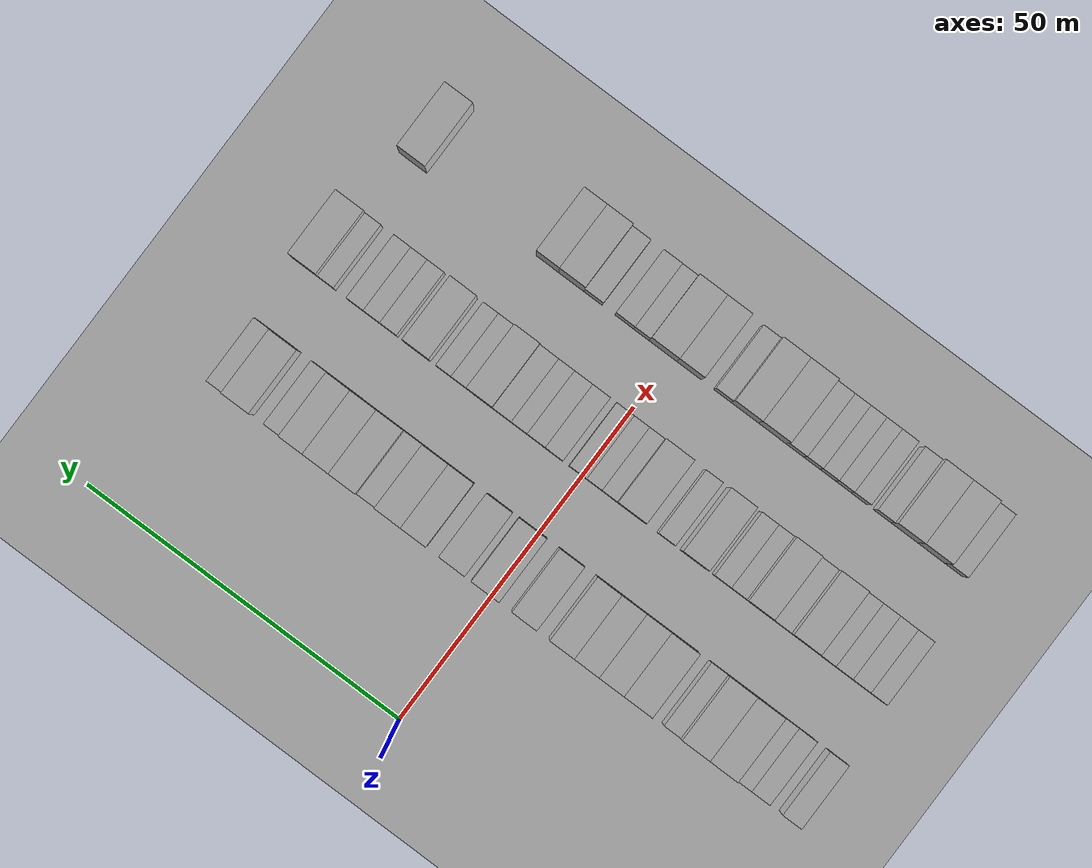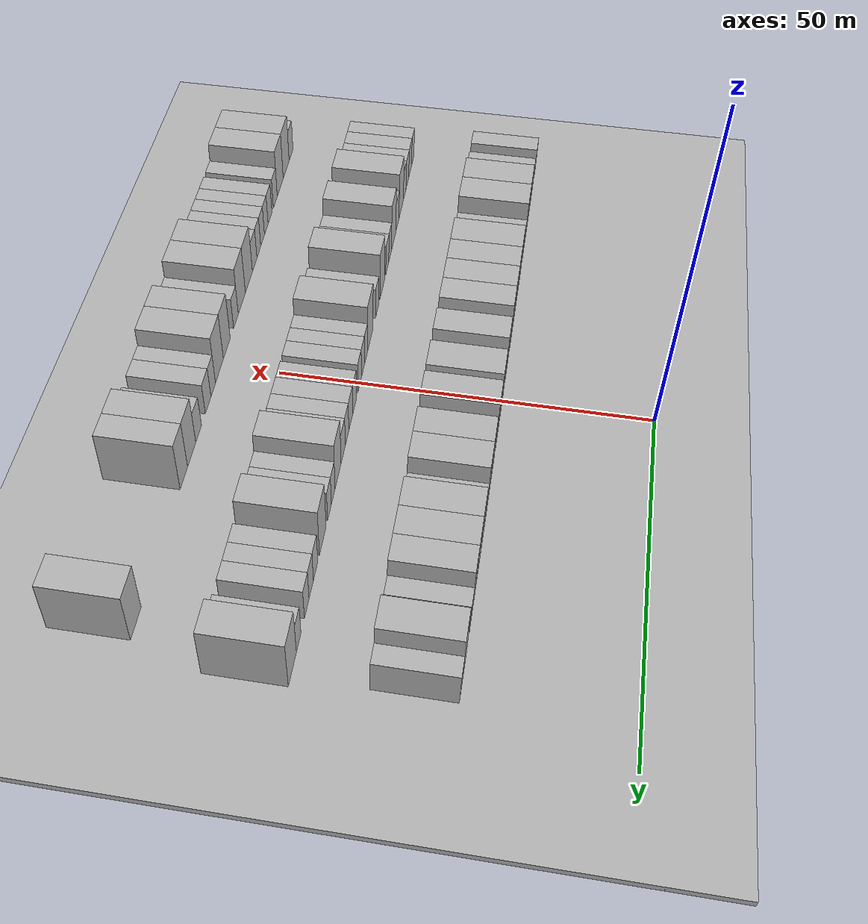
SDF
<sdf version="1.6">
 <world name="default">
  <include><name>ground_plane_1</name><uri>model://HANNAS_ground_plane</uri></include>
  <include>
   <name>ground_plane_2</name>
   <uri>model://HANNAS_ground_plane</uri>
   <pose>100 0 0  0 0 0</pose>
  </include>
  <model name="building_49">
   <static>1</static>
   <pose>25.0000 -47.3075 0 0.000000 0.000000 0.000000</pose>
   <link name="link">
    <pose>0 0 3.00 0 0 0</pose>
    <collision name="collision"><geometry><box><size>10.0000 2.9956 6.0000</size></box></geometry></collision>
    <visual name="visual">
     <cast_shadows>0</cast_shadows>
     <geometry><box><size>10.0000 2.9956 6.0000</size></box></geometry>
     <material>
      <script>
       <uri>model://HANNAS_wall/materials/scripts</uri>
       <uri>model://HANNAS_wall/materials/textures</uri>
       <name>vrc/HANNAS_wall</name>
      </script>
     </material>
    </visual>
   </link>
  </model>
  <model name="building_50">
   <static>1</static>
   <pose>25.0000 -42.3618 0 0.000000 0.000000 0.000000</pose>
   <link name="link">
    <pose>0 0 3.00 0 0 0</pose>
    <collision name="collision"><geometry><box><size>10.0000 2.8956 6.0000</size></box></geometry></collision>
    <visual name="visual">
     <cast_shadows>0</cast_shadows>
     <geometry><box><size>10.0000 2.8956 6.0000</size></box></geometry>
     <material>
      <script>
       <uri>model://HANNAS_wall/materials/scripts</uri>
       <uri>model://HANNAS_wall/materials/textures</uri>
       <name>vrc/HANNAS_wall</name>
      </script>
     </material>
    </visual>
   </link>
  </model>
  <model name="building_51">
   <static>1</static>
   <pose>25.0000 -39.6973 0 0.000000 0.000000 0.000000</pose>
   <link name="link">
    <pose>0 0 3.00 0 0 0</pose>
    <collision name="collision"><geometry><box><size>10.0000 2.4335 6.0000</size></box></geometry></collision>
    <visual name="visual">
     <cast_shadows>0</cast_shadows>
     <geometry><box><size>10.0000 2.4335 6.0000</size></box></geometry>
     <material>
      <script>
       <uri>model://HANNAS_wall/materials/scripts</uri>
       <uri>model://HANNAS_wall/materials/textures</uri>
       <name>vrc/HANNAS_wall</name>
      </script>
     </material>
    </visual>
   </link>
  </model>
  <model name="building_52">
   <static>1</static>
   <pose>25.0000 -36.2918 0 0.000000 0.000000 0.000000</pose>
   <link name="link">
    <pose>0 0 4.50 0 0 0</pose>
    <collision name="collision"><geometry><box><size>10.0000 4.3774 9.0000</size></box></geometry></collision>
    <visual name="visual">
     <cast_shadows>0</cast_shadows>
     <geometry><box><size>10.0000 4.3774 9.0000</size></box></geometry>
     <material>
      <script>
       <uri>model://HANNAS_wall/materials/scripts</uri>
       <uri>model://HANNAS_wall/materials/textures</uri>
       <name>vrc/HANNAS_wall</name>
      </script>
     </material>
    </visual>
   </link>
  </model>
  <model name="building_53">
   <static>1</static>
   <pose>25.0000 -31.9116 0 0.000000 0.000000 0.000000</pose>
   <link name="link">
    <pose>0 0 4.50 0 0 0</pose>
    <collision name="collision"><geometry><box><size>10.0000 4.3831 9.0000</size></box></geometry></collision>
    <visual name="visual">
     <cast_shadows>0</cast_shadows>
     <geometry><box><size>10.0000 4.3831 9.0000</size></box></geometry>
     <material>
      <script>
       <uri>model://HANNAS_wall/materials/scripts</uri>
       <uri>model://HANNAS_wall/materials/textures</uri>
       <name>vrc/HANNAS_wall</name>
      </script>
     </material>
    </visual>
   </link>
  </model>
  <model name="building_54">
   <static>1</static>
   <pose>25.0000 -28.4054 0 0.000000 0.000000 0.000000</pose>
   <link name="link">
    <pose>0 0 3.00 0 0 0</pose>
    <collision name="collision"><geometry><box><size>10.0000 2.6292 6.0000</size></box></geometry></collision>
    <visual name="visual">
     <cast_shadows>0</cast_shadows>
     <geometry><box><size>10.0000 2.6292 6.0000</size></box></geometry>
     <material>
      <script>
       <uri>model://HANNAS_wall/materials/scripts</uri>
       <uri>model://HANNAS_wall/materials/textures</uri>
       <name>vrc/HANNAS_wall</name>
      </script>
     </material>
    </visual>
   </link>
  </model>
  <model name="building_55">
   <static>1</static>
   <pose>25.0000 -22.8573 0 0.000000 0.000000 0.000000</pose>
   <link name="link">
    <pose>0 0 4.50 0 0 0</pose>
    <collision name="collision"><geometry><box><size>10.0000 4.4671 9.0000</size></box></geometry></collision>
    <visual name="visual">
     <cast_shadows>0</cast_shadows>
     <geometry><box><size>10.0000 4.4671 9.0000</size></box></geometry>
     <material>
      <script>
       <uri>model://HANNAS_wall/materials/scripts</uri>
       <uri>model://HANNAS_wall/materials/textures</uri>
       <name>vrc/HANNAS_wall</name>
      </script>
     </material>
    </visual>
   </link>
  </model>
  <model name="building_56">
   <static>1</static>
   <pose>25.0000 -18.6829 0 0.000000 0.000000 0.000000</pose>
   <link name="link">
    <pose>0 0 4.50 0 0 0</pose>
    <collision name="collision"><geometry><box><size>10.0000 3.8817 9.0000</size></box></geometry></collision>
    <visual name="visual">
     <cast_shadows>0</cast_shadows>
     <geometry><box><size>10.0000 3.8817 9.0000</size></box></geometry>
     <material>
      <script>
       <uri>model://HANNAS_wall/materials/scripts</uri>
       <uri>model://HANNAS_wall/materials/textures</uri>
       <name>vrc/HANNAS_wall</name>
      </script>
     </material>
    </visual>
   </link>
  </model>
  <model name="building_57">
   <static>1</static>
   <pose>25.0000 -14.7864 0 0.000000 0.000000 0.000000</pose>
   <link name="link">
    <pose>0 0 4.50 0 0 0</pose>
    <collision name="collision"><geometry><box><size>10.0000 3.9114 9.0000</size></box></geometry></collision>
    <visual name="visual">
     <cast_shadows>0</cast_shadows>
     <geometry><box><size>10.0000 3.9114 9.0000</size></box></geometry>
     <material>
      <script>
       <uri>model://HANNAS_wall/materials/scripts</uri>
       <uri>model://HANNAS_wall/materials/textures</uri>
       <name>vrc/HANNAS_wall</name>
      </script>
     </material>
    </visual>
   </link>
  </model>
  <model name="building_58">
   <static>1</static>
   <pose>25.0000 -10.9060 0 0.000000 0.000000 0.000000</pose>
   <link name="link">
    <pose>0 0 4.50 0 0 0</pose>
    <collision name="collision"><geometry><box><size>10.0000 3.8493 9.0000</size></box></geometry></collision>
    <visual name="visual">
     <cast_shadows>0</cast_shadows>
     <geometry><box><size>10.0000 3.8493 9.0000</size></box></geometry>
     <material>
      <script>
       <uri>model://HANNAS_wall/materials/scripts</uri>
       <uri>model://HANNAS_wall/materials/textures</uri>
       <name>vrc/HANNAS_wall</name>
      </script>
     </material>
    </visual>
   </link>
  </model>
  <model name="building_59">
   <static>1</static>
   <pose>25.0000 -5.0207 0 0.000000 0.000000 0.000000</pose>
   <link name="link">
    <pose>0 0 4.50 0 0 0</pose>
    <collision name="collision"><geometry><box><size>10.0000 3.9213 9.0000</size></box></geometry></collision>
    <visual name="visual">
     <cast_shadows>0</cast_shadows>
     <geometry><box><size>10.0000 3.9213 9.0000</size></box></geometry>
     <material>
      <script>
       <uri>model://HANNAS_wall/materials/scripts</uri>
       <uri>model://HANNAS_wall/materials/textures</uri>
       <name>vrc/HANNAS_wall</name>
      </script>
     </material>
    </visual>
   </link>
  </model>
  <model name="building_60">
   <static>1</static>
   <pose>25.0000 1.1351 0 0.000000 0.000000 0.000000</pose>
   <link name="link">
    <pose>0 0 4.50 0 0 0</pose>
    <collision name="collision"><geometry><box><size>10.0000 4.3903 9.0000</size></box></geometry></collision>
    <visual name="visual">
     <cast_shadows>0</cast_shadows>
     <geometry><box><size>10.0000 4.3903 9.0000</size></box></geometry>
     <material>
      <script>
       <uri>model://HANNAS_wall/materials/scripts</uri>
       <uri>model://HANNAS_wall/materials/textures</uri>
       <name>vrc/HANNAS_wall</name>
      </script>
     </material>
    </visual>
   </link>
  </model>
  <model name="building_61">
   <static>1</static>
   <pose>25.0000 6.3859 0 0.000000 0.000000 0.000000</pose>
   <link name="link">
    <pose>0 0 4.50 0 0 0</pose>
    <collision name="collision"><geometry><box><size>10.0000 4.1113 9.0000</size></box></geometry></collision>
    <visual name="visual">
     <cast_shadows>0</cast_shadows>
     <geometry><box><size>10.0000 4.1113 9.0000</size></box></geometry>
     <material>
      <script>
       <uri>model://HANNAS_wall/materials/scripts</uri>
       <uri>model://HANNAS_wall/materials/textures</uri>
       <name>vrc/HANNAS_wall</name>
      </script>
     </material>
    </visual>
   </link>
  </model>
  <model name="building_62">
   <static>1</static>
   <pose>25.0000 12.4364 0 0.000000 0.000000 0.000000</pose>
   <link name="link">
    <pose>0 0 4.50 0 0 0</pose>
    <collision name="collision"><geometry><box><size>10.0000 3.9896 9.0000</size></box></geometry></collision>
    <visual name="visual">
     <cast_shadows>0</cast_shadows>
     <geometry><box><size>10.0000 3.9896 9.0000</size></box></geometry>
     <material>
      <script>
       <uri>model://HANNAS_wall/materials/scripts</uri>
       <uri>model://HANNAS_wall/materials/textures</uri>
       <name>vrc/HANNAS_wall</name>
      </script>
     </material>
    </visual>
   </link>
  </model>
  <model name="building_63">
   <static>1</static>
   <pose>25.0000 16.4894 0 0.000000 0.000000 0.000000</pose>
   <link name="link">
    <pose>0 0 4.50 0 0 0</pose>
    <collision name="collision"><geometry><box><size>10.0000 4.1165 9.0000</size></box></geometry></collision>
    <visual name="visual">
     <cast_shadows>0</cast_shadows>
     <geometry><box><size>10.0000 4.1165 9.0000</size></box></geometry>
     <material>
      <script>
       <uri>model://HANNAS_wall/materials/scripts</uri>
       <uri>model://HANNAS_wall/materials/textures</uri>
       <name>vrc/HANNAS_wall</name>
      </script>
     </material>
    </visual>
   </link>
  </model>
  <model name="building_64">
   <static>1</static>
   <pose>25.0000 20.0148 0 0.000000 0.000000 0.000000</pose>
   <link name="link">
    <pose>0 0 3.00 0 0 0</pose>
    <collision name="collision"><geometry><box><size>10.0000 2.9342 6.0000</size></box></geometry></collision>
    <visual name="visual">
     <cast_shadows>0</cast_shadows>
     <geometry><box><size>10.0000 2.9342 6.0000</size></box></geometry>
     <material>
      <script>
       <uri>model://HANNAS_wall/materials/scripts</uri>
       <uri>model://HANNAS_wall/materials/textures</uri>
       <name>vrc/HANNAS_wall</name>
      </script>
     </material>
    </visual>
   </link>
  </model>
  <model name="building_65">
   <static>1</static>
   <pose>25.0000 23.6106 0 0.000000 0.000000 0.000000</pose>
   <link name="link">
    <pose>0 0 4.50 0 0 0</pose>
    <collision name="collision"><geometry><box><size>10.0000 4.2573 9.0000</size></box></geometry></collision>
    <visual name="visual">
     <cast_shadows>0</cast_shadows>
     <geometry><box><size>10.0000 4.2573 9.0000</size></box></geometry>
     <material>
      <script>
       <uri>model://HANNAS_wall/materials/scripts</uri>
       <uri>model://HANNAS_wall/materials/textures</uri>
       <name>vrc/HANNAS_wall</name>
      </script>
     </material>
    </visual>
   </link>
  </model>
  <model name="building_66">
   <static>1</static>
   <pose>25.0000 27.7748 0 0.000000 0.000000 0.000000</pose>
   <link name="link">
    <pose>0 0 4.50 0 0 0</pose>
    <collision name="collision"><geometry><box><size>10.0000 4.0713 9.0000</size></box></geometry></collision>
    <visual name="visual">
     <cast_shadows>0</cast_shadows>
     <geometry><box><size>10.0000 4.0713 9.0000</size></box></geometry>
     <material>
      <script>
       <uri>model://HANNAS_wall/materials/scripts</uri>
       <uri>model://HANNAS_wall/materials/textures</uri>
       <name>vrc/HANNAS_wall</name>
      </script>
     </material>
    </visual>
   </link>
  </model>
  <model name="building_67">
   <static>1</static>
   <pose>25.0000 31.6976 0 0.000000 0.000000 0.000000</pose>
   <link name="link">
    <pose>0 0 4.50 0 0 0</pose>
    <collision name="collision"><geometry><box><size>10.0000 3.7743 9.0000</size></box></geometry></collision>
    <visual name="visual">
     <cast_shadows>0</cast_shadows>
     <geometry><box><size>10.0000 3.7743 9.0000</size></box></geometry>
     <material>
      <script>
       <uri>model://HANNAS_wall/materials/scripts</uri>
       <uri>model://HANNAS_wall/materials/textures</uri>
       <name>vrc/HANNAS_wall</name>
      </script>
     </material>
    </visual>
   </link>
  </model>
  <model name="building_68">
   <static>1</static>
   <pose>25.0000 34.8935 0 0.000000 0.000000 0.000000</pose>
   <link name="link">
    <pose>0 0 3.00 0 0 0</pose>
    <collision name="collision"><geometry><box><size>10.0000 2.6174 6.0000</size></box></geometry></collision>
    <visual name="visual">
     <cast_shadows>0</cast_shadows>
     <geometry><box><size>10.0000 2.6174 6.0000</size></box></geometry>
     <material>
      <script>
       <uri>model://HANNAS_wall/materials/scripts</uri>
       <uri>model://HANNAS_wall/materials/textures</uri>
       <name>vrc/HANNAS_wall</name>
      </script>
     </material>
    </visual>
   </link>
  </model>
  <model name="building_69">
   <static>1</static>
   <pose>25.0000 40.3773 0 0.000000 0.000000 0.000000</pose>
   <link name="link">
    <pose>0 0 4.50 0 0 0</pose>
    <collision name="collision"><geometry><box><size>10.0000 4.3502 9.0000</size></box></geometry></collision>
    <visual name="visual">
     <cast_shadows>0</cast_shadows>
     <geometry><box><size>10.0000 4.3502 9.0000</size></box></geometry>
     <material>
      <script>
       <uri>model://HANNAS_wall/materials/scripts</uri>
       <uri>model://HANNAS_wall/materials/textures</uri>
       <name>vrc/HANNAS_wall</name>
      </script>
     </material>
    </visual>
   </link>
  </model>
  <model name="building_70">
   <static>1</static>
   <pose>25.0000 43.8943 0 0.000000 0.000000 0.000000</pose>
   <link name="link">
    <pose>0 0 3.00 0 0 0</pose>
    <collision name="collision"><geometry><box><size>10.0000 2.6839 6.0000</size></box></geometry></collision>
    <visual name="visual">
     <cast_shadows>0</cast_shadows>
     <geometry><box><size>10.0000 2.6839 6.0000</size></box></geometry>
     <material>
      <script>
       <uri>model://HANNAS_wall/materials/scripts</uri>
       <uri>model://HANNAS_wall/materials/textures</uri>
       <name>vrc/HANNAS_wall</name>
      </script>
     </material>
    </visual>
   </link>
  </model>
  <model name="building_160">
   <static>1</static>
   <pose>44.0000 -46.7497 0 0.000000 0.000000 0.000000</pose>
   <link name="link">
    <pose>0 0 3.00 0 0 0</pose>
    <collision name="collision"><geometry><box><size>10.0000 2.5936 6.0000</size></box></geometry></collision>
    <visual name="visual">
     <cast_shadows>0</cast_shadows>
     <geometry><box><size>10.0000 2.5936 6.0000</size></box></geometry>
     <material>
      <script>
       <uri>model://HANNAS_wall/materials/scripts</uri>
       <uri>model://HANNAS_wall/materials/textures</uri>
       <name>vrc/HANNAS_wall</name>
      </script>
     </material>
    </visual>
   </link>
  </model>
  <model name="building_161">
   <static>1</static>
   <pose>44.0000 -44.0382 0 0.000000 0.000000 0.000000</pose>
   <link name="link">
    <pose>0 0 3.00 0 0 0</pose>
    <collision name="collision"><geometry><box><size>10.0000 2.8294 6.0000</size></box></geometry></collision>
    <visual name="visual">
     <cast_shadows>0</cast_shadows>
     <geometry><box><size>10.0000 2.8294 6.0000</size></box></geometry>
     <material>
      <script>
       <uri>model://HANNAS_wall/materials/scripts</uri>
       <uri>model://HANNAS_wall/materials/textures</uri>
       <name>vrc/HANNAS_wall</name>
      </script>
     </material>
    </visual>
   </link>
  </model>
  <model name="building_162">
   <static>1</static>
   <pose>44.0000 -41.2803 0 0.000000 0.000000 0.000000</pose>
   <link name="link">
    <pose>0 0 3.00 0 0 0</pose>
    <collision name="collision"><geometry><box><size>10.0000 2.6864 6.0000</size></box></geometry></collision>
    <visual name="visual">
     <cast_shadows>0</cast_shadows>
     <geometry><box><size>10.0000 2.6864 6.0000</size></box></geometry>
     <material>
      <script>
       <uri>model://HANNAS_wall/materials/scripts</uri>
       <uri>model://HANNAS_wall/materials/textures</uri>
       <name>vrc/HANNAS_wall</name>
      </script>
     </material>
    </visual>
   </link>
  </model>
  <model name="building_163">
   <static>1</static>
   <pose>44.0000 -38.6040 0 0.000000 0.000000 0.000000</pose>
   <link name="link">
    <pose>0 0 3.00 0 0 0</pose>
    <collision name="collision"><geometry><box><size>10.0000 2.6662 6.0000</size></box></geometry></collision>
    <visual name="visual">
     <cast_shadows>0</cast_shadows>
     <geometry><box><size>10.0000 2.6662 6.0000</size></box></geometry>
     <material>
      <script>
       <uri>model://HANNAS_wall/materials/scripts</uri>
       <uri>model://HANNAS_wall/materials/textures</uri>
       <name>vrc/HANNAS_wall</name>
      </script>
     </material>
    </visual>
   </link>
  </model>
  <model name="building_164">
   <static>1</static>
   <pose>44.0000 -35.1034 0 0.000000 0.000000 0.000000</pose>
   <link name="link">
    <pose>0 0 4.50 0 0 0</pose>
    <collision name="collision"><geometry><box><size>10.0000 4.3351 9.0000</size></box></geometry></collision>
    <visual name="visual">
     <cast_shadows>0</cast_shadows>
     <geometry><box><size>10.0000 4.3351 9.0000</size></box></geometry>
     <material>
      <script>
       <uri>model://HANNAS_wall/materials/scripts</uri>
       <uri>model://HANNAS_wall/materials/textures</uri>
       <name>vrc/HANNAS_wall</name>
      </script>
     </material>
    </visual>
   </link>
  </model>
  <model name="building_165">
   <static>1</static>
   <pose>44.0000 -31.4518 0 0.000000 0.000000 0.000000</pose>
   <link name="link">
    <pose>0 0 3.00 0 0 0</pose>
    <collision name="collision"><geometry><box><size>10.0000 2.9680 6.0000</size></box></geometry></collision>
    <visual name="visual">
     <cast_shadows>0</cast_shadows>
     <geometry><box><size>10.0000 2.9680 6.0000</size></box></geometry>
     <material>
      <script>
       <uri>model://HANNAS_wall/materials/scripts</uri>
       <uri>model://HANNAS_wall/materials/textures</uri>
       <name>vrc/HANNAS_wall</name>
      </script>
     </material>
    </visual>
   </link>
  </model>
  <model name="building_166">
   <static>1</static>
   <pose>44.0000 -27.9269 0 0.000000 0.000000 0.000000</pose>
   <link name="link">
    <pose>0 0 4.50 0 0 0</pose>
    <collision name="collision"><geometry><box><size>10.0000 4.0819 9.0000</size></box></geometry></collision>
    <visual name="visual">
     <cast_shadows>0</cast_shadows>
     <geometry><box><size>10.0000 4.0819 9.0000</size></box></geometry>
     <material>
      <script>
       <uri>model://HANNAS_wall/materials/scripts</uri>
       <uri>model://HANNAS_wall/materials/textures</uri>
       <name>vrc/HANNAS_wall</name>
      </script>
     </material>
    </visual>
   </link>
  </model>
  <model name="building_167">
   <static>1</static>
   <pose>44.0000 -24.6634 0 0.000000 0.000000 0.000000</pose>
   <link name="link">
    <pose>0 0 3.00 0 0 0</pose>
    <collision name="collision"><geometry><box><size>10.0000 2.4450 6.0000</size></box></geometry></collision>
    <visual name="visual">
     <cast_shadows>0</cast_shadows>
     <geometry><box><size>10.0000 2.4450 6.0000</size></box></geometry>
     <material>
      <script>
       <uri>model://HANNAS_wall/materials/scripts</uri>
       <uri>model://HANNAS_wall/materials/textures</uri>
       <name>vrc/HANNAS_wall</name>
      </script>
     </material>
    </visual>
   </link>
  </model>
  <model name="building_168">
   <static>1</static>
   <pose>44.0000 -22.1077 0 0.000000 0.000000 0.000000</pose>
   <link name="link">
    <pose>0 0 3.00 0 0 0</pose>
    <collision name="collision"><geometry><box><size>10.0000 2.6664 6.0000</size></box></geometry></collision>
    <visual name="visual">
     <cast_shadows>0</cast_shadows>
     <geometry><box><size>10.0000 2.6664 6.0000</size></box></geometry>
     <material>
      <script>
       <uri>model://HANNAS_wall/materials/scripts</uri>
       <uri>model://HANNAS_wall/materials/textures</uri>
       <name>vrc/HANNAS_wall</name>
      </script>
     </material>
    </visual>
   </link>
  </model>
  <model name="building_169">
   <static>1</static>
   <pose>44.0000 -17.7062 0 0.000000 0.000000 0.000000</pose>
   <link name="link">
    <pose>0 0 4.50 0 0 0</pose>
    <collision name="collision"><geometry><box><size>10.0000 4.1365 9.0000</size></box></geometry></collision>
    <visual name="visual">
     <cast_shadows>0</cast_shadows>
     <geometry><box><size>10.0000 4.1365 9.0000</size></box></geometry>
     <material>
      <script>
       <uri>model://HANNAS_wall/materials/scripts</uri>
       <uri>model://HANNAS_wall/materials/textures</uri>
       <name>vrc/HANNAS_wall</name>
      </script>
     </material>
    </visual>
   </link>
  </model>
  <model name="building_170">
   <static>1</static>
   <pose>44.0000 -13.2798 0 0.000000 0.000000 0.000000</pose>
   <link name="link">
    <pose>0 0 3.00 0 0 0</pose>
    <collision name="collision"><geometry><box><size>10.0000 2.7163 6.0000</size></box></geometry></collision>
    <visual name="visual">
     <cast_shadows>0</cast_shadows>
     <geometry><box><size>10.0000 2.7163 6.0000</size></box></geometry>
     <material>
      <script>
       <uri>model://HANNAS_wall/materials/scripts</uri>
       <uri>model://HANNAS_wall/materials/textures</uri>
       <name>vrc/HANNAS_wall</name>
      </script>
     </material>
    </visual>
   </link>
  </model>
  <model name="building_171">
   <static>1</static>
   <pose>44.0000 -7.6720 0 0.000000 0.000000 0.000000</pose>
   <link name="link">
    <pose>0 0 4.50 0 0 0</pose>
    <collision name="collision"><geometry><box><size>10.0000 4.4992 9.0000</size></box></geometry></collision>
    <visual name="visual">
     <cast_shadows>0</cast_shadows>
     <geometry><box><size>10.0000 4.4992 9.0000</size></box></geometry>
     <material>
      <script>
       <uri>model://HANNAS_wall/materials/scripts</uri>
       <uri>model://HANNAS_wall/materials/textures</uri>
       <name>vrc/HANNAS_wall</name>
      </script>
     </material>
    </visual>
   </link>
  </model>
  <model name="building_172">
   <static>1</static>
   <pose>44.0000 -4.2141 0 0.000000 0.000000 0.000000</pose>
   <link name="link">
    <pose>0 0 3.00 0 0 0</pose>
    <collision name="collision"><geometry><box><size>10.0000 2.4166 6.0000</size></box></geometry></collision>
    <visual name="visual">
     <cast_shadows>0</cast_shadows>
     <geometry><box><size>10.0000 2.4166 6.0000</size></box></geometry>
     <material>
      <script>
       <uri>model://HANNAS_wall/materials/scripts</uri>
       <uri>model://HANNAS_wall/materials/textures</uri>
       <name>vrc/HANNAS_wall</name>
      </script>
     </material>
    </visual>
   </link>
  </model>
  <model name="building_173">
   <static>1</static>
   <pose>44.0000 -1.7904 0 0.000000 0.000000 0.000000</pose>
   <link name="link">
    <pose>0 0 3.00 0 0 0</pose>
    <collision name="collision"><geometry><box><size>10.0000 2.4309 6.0000</size></box></geometry></collision>
    <visual name="visual">
     <cast_shadows>0</cast_shadows>
     <geometry><box><size>10.0000 2.4309 6.0000</size></box></geometry>
     <material>
      <script>
       <uri>model://HANNAS_wall/materials/scripts</uri>
       <uri>model://HANNAS_wall/materials/textures</uri>
       <name>vrc/HANNAS_wall</name>
      </script>
     </material>
    </visual>
   </link>
  </model>
  <model name="building_174">
   <static>1</static>
   <pose>44.0000 0.8047 0 0.000000 0.000000 0.000000</pose>
   <link name="link">
    <pose>0 0 3.00 0 0 0</pose>
    <collision name="collision"><geometry><box><size>10.0000 2.7592 6.0000</size></box></geometry></collision>
    <visual name="visual">
     <cast_shadows>0</cast_shadows>
     <geometry><box><size>10.0000 2.7592 6.0000</size></box></geometry>
     <material>
      <script>
       <uri>model://HANNAS_wall/materials/scripts</uri>
       <uri>model://HANNAS_wall/materials/textures</uri>
       <name>vrc/HANNAS_wall</name>
      </script>
     </material>
    </visual>
   </link>
  </model>
  <model name="building_175">
   <static>1</static>
   <pose>44.0000 4.5854 0 0.000000 0.000000 0.000000</pose>
   <link name="link">
    <pose>0 0 3.00 0 0 0</pose>
    <collision name="collision"><geometry><box><size>10.0000 2.8022 6.0000</size></box></geometry></collision>
    <visual name="visual">
     <cast_shadows>0</cast_shadows>
     <geometry><box><size>10.0000 2.8022 6.0000</size></box></geometry>
     <material>
      <script>
       <uri>model://HANNAS_wall/materials/scripts</uri>
       <uri>model://HANNAS_wall/materials/textures</uri>
       <name>vrc/HANNAS_wall</name>
      </script>
     </material>
    </visual>
   </link>
  </model>
  <model name="building_176">
   <static>1</static>
   <pose>44.0000 7.4216 0 0.000000 0.000000 0.000000</pose>
   <link name="link">
    <pose>0 0 3.00 0 0 0</pose>
    <collision name="collision"><geometry><box><size>10.0000 2.8704 6.0000</size></box></geometry></collision>
    <visual name="visual">
     <cast_shadows>0</cast_shadows>
     <geometry><box><size>10.0000 2.8704 6.0000</size></box></geometry>
     <material>
      <script>
       <uri>model://HANNAS_wall/materials/scripts</uri>
       <uri>model://HANNAS_wall/materials/textures</uri>
       <name>vrc/HANNAS_wall</name>
      </script>
     </material>
    </visual>
   </link>
  </model>
  <model name="building_177">
   <static>1</static>
   <pose>44.0000 10.1140 0 0.000000 0.000000 0.000000</pose>
   <link name="link">
    <pose>0 0 3.00 0 0 0</pose>
    <collision name="collision"><geometry><box><size>10.0000 2.5143 6.0000</size></box></geometry></collision>
    <visual name="visual">
     <cast_shadows>0</cast_shadows>
     <geometry><box><size>10.0000 2.5143 6.0000</size></box></geometry>
     <material>
      <script>
       <uri>model://HANNAS_wall/materials/scripts</uri>
       <uri>model://HANNAS_wall/materials/textures</uri>
       <name>vrc/HANNAS_wall</name>
      </script>
     </material>
    </visual>
   </link>
  </model>
  <model name="building_178">
   <static>1</static>
   <pose>44.0000 12.8634 0 0.000000 0.000000 0.000000</pose>
   <link name="link">
    <pose>0 0 3.00 0 0 0</pose>
    <collision name="collision"><geometry><box><size>10.0000 2.9845 6.0000</size></box></geometry></collision>
    <visual name="visual">
     <cast_shadows>0</cast_shadows>
     <geometry><box><size>10.0000 2.9845 6.0000</size></box></geometry>
     <material>
      <script>
       <uri>model://HANNAS_wall/materials/scripts</uri>
       <uri>model://HANNAS_wall/materials/textures</uri>
       <name>vrc/HANNAS_wall</name>
      </script>
     </material>
    </visual>
   </link>
  </model>
  <model name="building_179">
   <static>1</static>
   <pose>44.0000 16.3853 0 0.000000 0.000000 0.000000</pose>
   <link name="link">
    <pose>0 0 4.50 0 0 0</pose>
    <collision name="collision"><geometry><box><size>10.0000 4.0593 9.0000</size></box></geometry></collision>
    <visual name="visual">
     <cast_shadows>0</cast_shadows>
     <geometry><box><size>10.0000 4.0593 9.0000</size></box></geometry>
     <material>
      <script>
       <uri>model://HANNAS_wall/materials/scripts</uri>
       <uri>model://HANNAS_wall/materials/textures</uri>
       <name>vrc/HANNAS_wall</name>
      </script>
     </material>
    </visual>
   </link>
  </model>
  <model name="building_180">
   <static>1</static>
   <pose>44.0000 19.6490 0 0.000000 0.000000 0.000000</pose>
   <link name="link">
    <pose>0 0 3.00 0 0 0</pose>
    <collision name="collision"><geometry><box><size>10.0000 2.4683 6.0000</size></box></geometry></collision>
    <visual name="visual">
     <cast_shadows>0</cast_shadows>
     <geometry><box><size>10.0000 2.4683 6.0000</size></box></geometry>
     <material>
      <script>
       <uri>model://HANNAS_wall/materials/scripts</uri>
       <uri>model://HANNAS_wall/materials/textures</uri>
       <name>vrc/HANNAS_wall</name>
      </script>
     </material>
    </visual>
   </link>
  </model>
  <model name="building_181">
   <static>1</static>
   <pose>44.0000 22.0967 0 0.000000 0.000000 0.000000</pose>
   <link name="link">
    <pose>0 0 3.00 0 0 0</pose>
    <collision name="collision"><geometry><box><size>10.0000 2.4271 6.0000</size></box></geometry></collision>
    <visual name="visual">
     <cast_shadows>0</cast_shadows>
     <geometry><box><size>10.0000 2.4271 6.0000</size></box></geometry>
     <material>
      <script>
       <uri>model://HANNAS_wall/materials/scripts</uri>
       <uri>model://HANNAS_wall/materials/textures</uri>
       <name>vrc/HANNAS_wall</name>
      </script>
     </material>
    </visual>
   </link>
  </model>
  <model name="building_182">
   <static>1</static>
   <pose>44.0000 26.3995 0 0.000000 0.000000 0.000000</pose>
   <link name="link">
    <pose>0 0 4.50 0 0 0</pose>
    <collision name="collision"><geometry><box><size>10.0000 4.1785 9.0000</size></box></geometry></collision>
    <visual name="visual">
     <cast_shadows>0</cast_shadows>
     <geometry><box><size>10.0000 4.1785 9.0000</size></box></geometry>
     <material>
      <script>
       <uri>model://HANNAS_wall/materials/scripts</uri>
       <uri>model://HANNAS_wall/materials/textures</uri>
       <name>vrc/HANNAS_wall</name>
      </script>
     </material>
    </visual>
   </link>
  </model>
  <model name="building_183">
   <static>1</static>
   <pose>44.0000 30.8239 0 0.000000 0.000000 0.000000</pose>
   <link name="link">
    <pose>0 0 3.00 0 0 0</pose>
    <collision name="collision"><geometry><box><size>10.0000 2.6702 6.0000</size></box></geometry></collision>
    <visual name="visual">
     <cast_shadows>0</cast_shadows>
     <geometry><box><size>10.0000 2.6702 6.0000</size></box></geometry>
     <material>
      <script>
       <uri>model://HANNAS_wall/materials/scripts</uri>
       <uri>model://HANNAS_wall/materials/textures</uri>
       <name>vrc/HANNAS_wall</name>
      </script>
     </material>
    </visual>
   </link>
  </model>
  <model name="building_184">
   <static>1</static>
   <pose>44.0000 33.4589 0 0.000000 0.000000 0.000000</pose>
   <link name="link">
    <pose>0 0 3.00 0 0 0</pose>
    <collision name="collision"><geometry><box><size>10.0000 2.5997 6.0000</size></box></geometry></collision>
    <visual name="visual">
     <cast_shadows>0</cast_shadows>
     <geometry><box><size>10.0000 2.5997 6.0000</size></box></geometry>
     <material>
      <script>
       <uri>model://HANNAS_wall/materials/scripts</uri>
       <uri>model://HANNAS_wall/materials/textures</uri>
       <name>vrc/HANNAS_wall</name>
      </script>
     </material>
    </visual>
   </link>
  </model>
  <model name="building_185">
   <static>1</static>
   <pose>44.0000 36.1044 0 0.000000 0.000000 0.000000</pose>
   <link name="link">
    <pose>0 0 3.00 0 0 0</pose>
    <collision name="collision"><geometry><box><size>10.0000 2.6914 6.0000</size></box></geometry></collision>
    <visual name="visual">
     <cast_shadows>0</cast_shadows>
     <geometry><box><size>10.0000 2.6914 6.0000</size></box></geometry>
     <material>
      <script>
       <uri>model://HANNAS_wall/materials/scripts</uri>
       <uri>model://HANNAS_wall/materials/textures</uri>
       <name>vrc/HANNAS_wall</name>
      </script>
     </material>
    </visual>
   </link>
  </model>
  <model name="building_186">
   <static>1</static>
   <pose>44.0000 40.7296 0 0.000000 0.000000 0.000000</pose>
   <link name="link">
    <pose>0 0 3.00 0 0 0</pose>
    <collision name="collision"><geometry><box><size>10.0000 2.5589 6.0000</size></box></geometry></collision>
    <visual name="visual">
     <cast_shadows>0</cast_shadows>
     <geometry><box><size>10.0000 2.5589 6.0000</size></box></geometry>
     <material>
      <script>
       <uri>model://HANNAS_wall/materials/scripts</uri>
       <uri>model://HANNAS_wall/materials/textures</uri>
       <name>vrc/HANNAS_wall</name>
      </script>
     </material>
    </visual>
   </link>
  </model>
  <model name="building_187">
   <static>1</static>
   <pose>44.0000 44.2156 0 0.000000 0.000000 0.000000</pose>
   <link name="link">
    <pose>0 0 4.50 0 0 0</pose>
    <collision name="collision"><geometry><box><size>10.0000 4.4131 9.0000</size></box></geometry></collision>
    <visual name="visual">
     <cast_shadows>0</cast_shadows>
     <geometry><box><size>10.0000 4.4131 9.0000</size></box></geometry>
     <material>
      <script>
       <uri>model://HANNAS_wall/materials/scripts</uri>
       <uri>model://HANNAS_wall/materials/textures</uri>
       <name>vrc/HANNAS_wall</name>
      </script>
     </material>
    </visual>
   </link>
  </model>
  <model name="building_283">
   <static>1</static>
   <pose>63.0000 -45.1027 0 0.000000 0.000000 0.000000</pose>
   <link name="link">
    <pose>0 0 3.00 0 0 0</pose>
    <collision name="collision"><geometry><box><size>10.0000 2.9095 6.0000</size></box></geometry></collision>
    <visual name="visual">
     <cast_shadows>0</cast_shadows>
     <geometry><box><size>10.0000 2.9095 6.0000</size></box></geometry>
     <material>
      <script>
       <uri>model://HANNAS_wall/materials/scripts</uri>
       <uri>model://HANNAS_wall/materials/textures</uri>
       <name>vrc/HANNAS_wall</name>
      </script>
     </material>
    </visual>
   </link>
  </model>
  <model name="building_284">
   <static>1</static>
   <pose>63.0000 -41.4632 0 0.000000 0.000000 0.000000</pose>
   <link name="link">
    <pose>0 0 4.50 0 0 0</pose>
    <collision name="collision"><geometry><box><size>10.0000 4.3694 9.0000</size></box></geometry></collision>
    <visual name="visual">
     <cast_shadows>0</cast_shadows>
     <geometry><box><size>10.0000 4.3694 9.0000</size></box></geometry>
     <material>
      <script>
       <uri>model://HANNAS_wall/materials/scripts</uri>
       <uri>model://HANNAS_wall/materials/textures</uri>
       <name>vrc/HANNAS_wall</name>
      </script>
     </material>
    </visual>
   </link>
  </model>
  <model name="building_285">
   <static>1</static>
   <pose>63.0000 -37.1395 0 0.000000 0.000000 0.000000</pose>
   <link name="link">
    <pose>0 0 4.50 0 0 0</pose>
    <collision name="collision"><geometry><box><size>10.0000 4.2780 9.0000</size></box></geometry></collision>
    <visual name="visual">
     <cast_shadows>0</cast_shadows>
     <geometry><box><size>10.0000 4.2780 9.0000</size></box></geometry>
     <material>
      <script>
       <uri>model://HANNAS_wall/materials/scripts</uri>
       <uri>model://HANNAS_wall/materials/textures</uri>
       <name>vrc/HANNAS_wall</name>
      </script>
     </material>
    </visual>
   </link>
  </model>
  <model name="building_286">
   <static>1</static>
   <pose>63.0000 -33.6283 0 0.000000 0.000000 0.000000</pose>
   <link name="link">
    <pose>0 0 3.00 0 0 0</pose>
    <collision name="collision"><geometry><box><size>10.0000 2.7444 6.0000</size></box></geometry></collision>
    <visual name="visual">
     <cast_shadows>0</cast_shadows>
     <geometry><box><size>10.0000 2.7444 6.0000</size></box></geometry>
     <material>
      <script>
       <uri>model://HANNAS_wall/materials/scripts</uri>
       <uri>model://HANNAS_wall/materials/textures</uri>
       <name>vrc/HANNAS_wall</name>
      </script>
     </material>
    </visual>
   </link>
  </model>
  <model name="building_287">
   <static>1</static>
   <pose>63.0000 -29.9275 0 0.000000 0.000000 0.000000</pose>
   <link name="link">
    <pose>0 0 3.00 0 0 0</pose>
    <collision name="collision"><geometry><box><size>10.0000 2.6572 6.0000</size></box></geometry></collision>
    <visual name="visual">
     <cast_shadows>0</cast_shadows>
     <geometry><box><size>10.0000 2.6572 6.0000</size></box></geometry>
     <material>
      <script>
       <uri>model://HANNAS_wall/materials/scripts</uri>
       <uri>model://HANNAS_wall/materials/textures</uri>
       <name>vrc/HANNAS_wall</name>
      </script>
     </material>
    </visual>
   </link>
  </model>
  <model name="building_288">
   <static>1</static>
   <pose>63.0000 -27.3825 0 0.000000 0.000000 0.000000</pose>
   <link name="link">
    <pose>0 0 3.00 0 0 0</pose>
    <collision name="collision"><geometry><box><size>10.0000 2.4329 6.0000</size></box></geometry></collision>
    <visual name="visual">
     <cast_shadows>0</cast_shadows>
     <geometry><box><size>10.0000 2.4329 6.0000</size></box></geometry>
     <material>
      <script>
       <uri>model://HANNAS_wall/materials/scripts</uri>
       <uri>model://HANNAS_wall/materials/textures</uri>
       <name>vrc/HANNAS_wall</name>
      </script>
     </material>
    </visual>
   </link>
  </model>
  <model name="building_289">
   <static>1</static>
   <pose>63.0000 -24.9116 0 0.000000 0.000000 0.000000</pose>
   <link name="link">
    <pose>0 0 3.00 0 0 0</pose>
    <collision name="collision"><geometry><box><size>10.0000 2.5088 6.0000</size></box></geometry></collision>
    <visual name="visual">
     <cast_shadows>0</cast_shadows>
     <geometry><box><size>10.0000 2.5088 6.0000</size></box></geometry>
     <material>
      <script>
       <uri>model://HANNAS_wall/materials/scripts</uri>
       <uri>model://HANNAS_wall/materials/textures</uri>
       <name>vrc/HANNAS_wall</name>
      </script>
     </material>
    </visual>
   </link>
  </model>
  <model name="building_290">
   <static>1</static>
   <pose>63.0000 -22.4086 0 0.000000 0.000000 0.000000</pose>
   <link name="link">
    <pose>0 0 3.00 0 0 0</pose>
    <collision name="collision"><geometry><box><size>10.0000 2.4973 6.0000</size></box></geometry></collision>
    <visual name="visual">
     <cast_shadows>0</cast_shadows>
     <geometry><box><size>10.0000 2.4973 6.0000</size></box></geometry>
     <material>
      <script>
       <uri>model://HANNAS_wall/materials/scripts</uri>
       <uri>model://HANNAS_wall/materials/textures</uri>
       <name>vrc/HANNAS_wall</name>
      </script>
     </material>
    </visual>
   </link>
  </model>
  <model name="building_291">
   <static>1</static>
   <pose>63.0000 -19.7095 0 0.000000 0.000000 0.000000</pose>
   <link name="link">
    <pose>0 0 3.00 0 0 0</pose>
    <collision name="collision"><geometry><box><size>10.0000 2.9009 6.0000</size></box></geometry></collision>
    <visual name="visual">
     <cast_shadows>0</cast_shadows>
     <geometry><box><size>10.0000 2.9009 6.0000</size></box></geometry>
     <material>
      <script>
       <uri>model://HANNAS_wall/materials/scripts</uri>
       <uri>model://HANNAS_wall/materials/textures</uri>
       <name>vrc/HANNAS_wall</name>
      </script>
     </material>
    </visual>
   </link>
  </model>
  <model name="building_292">
   <static>1</static>
   <pose>63.0000 -16.0478 0 0.000000 0.000000 0.000000</pose>
   <link name="link">
    <pose>0 0 4.50 0 0 0</pose>
    <collision name="collision"><geometry><box><size>10.0000 4.4224 9.0000</size></box></geometry></collision>
    <visual name="visual">
     <cast_shadows>0</cast_shadows>
     <geometry><box><size>10.0000 4.4224 9.0000</size></box></geometry>
     <material>
      <script>
       <uri>model://HANNAS_wall/materials/scripts</uri>
       <uri>model://HANNAS_wall/materials/textures</uri>
       <name>vrc/HANNAS_wall</name>
      </script>
     </material>
    </visual>
   </link>
  </model>
  <model name="building_293">
   <static>1</static>
   <pose>63.0000 -11.6634 0 0.000000 0.000000 0.000000</pose>
   <link name="link">
    <pose>0 0 4.50 0 0 0</pose>
    <collision name="collision"><geometry><box><size>10.0000 4.3464 9.0000</size></box></geometry></collision>
    <visual name="visual">
     <cast_shadows>0</cast_shadows>
     <geometry><box><size>10.0000 4.3464 9.0000</size></box></geometry>
     <material>
      <script>
       <uri>model://HANNAS_wall/materials/scripts</uri>
       <uri>model://HANNAS_wall/materials/textures</uri>
       <name>vrc/HANNAS_wall</name>
      </script>
     </material>
    </visual>
   </link>
  </model>
  <model name="building_294">
   <static>1</static>
   <pose>63.0000 -8.1081 0 0.000000 0.000000 0.000000</pose>
   <link name="link">
    <pose>0 0 3.00 0 0 0</pose>
    <collision name="collision"><geometry><box><size>10.0000 2.7641 6.0000</size></box></geometry></collision>
    <visual name="visual">
     <cast_shadows>0</cast_shadows>
     <geometry><box><size>10.0000 2.7641 6.0000</size></box></geometry>
     <material>
      <script>
       <uri>model://HANNAS_wall/materials/scripts</uri>
       <uri>model://HANNAS_wall/materials/textures</uri>
       <name>vrc/HANNAS_wall</name>
      </script>
     </material>
    </visual>
   </link>
  </model>
  <model name="building_295">
   <static>1</static>
   <pose>63.0000 -2.7542 0 0.000000 0.000000 0.000000</pose>
   <link name="link">
    <pose>0 0 4.50 0 0 0</pose>
    <collision name="collision"><geometry><box><size>10.0000 3.9437 9.0000</size></box></geometry></collision>
    <visual name="visual">
     <cast_shadows>0</cast_shadows>
     <geometry><box><size>10.0000 3.9437 9.0000</size></box></geometry>
     <material>
      <script>
       <uri>model://HANNAS_wall/materials/scripts</uri>
       <uri>model://HANNAS_wall/materials/textures</uri>
       <name>vrc/HANNAS_wall</name>
      </script>
     </material>
    </visual>
   </link>
  </model>
  <model name="building_296">
   <static>1</static>
   <pose>63.0000 1.4157 0 0.000000 0.000000 0.000000</pose>
   <link name="link">
    <pose>0 0 4.50 0 0 0</pose>
    <collision name="collision"><geometry><box><size>10.0000 4.3963 9.0000</size></box></geometry></collision>
    <visual name="visual">
     <cast_shadows>0</cast_shadows>
     <geometry><box><size>10.0000 4.3963 9.0000</size></box></geometry>
     <material>
      <script>
       <uri>model://HANNAS_wall/materials/scripts</uri>
       <uri>model://HANNAS_wall/materials/textures</uri>
       <name>vrc/HANNAS_wall</name>
      </script>
     </material>
    </visual>
   </link>
  </model>
  <model name="building_297">
   <static>1</static>
   <pose>63.0000 4.8518 0 0.000000 0.000000 0.000000</pose>
   <link name="link">
    <pose>0 0 3.00 0 0 0</pose>
    <collision name="collision"><geometry><box><size>10.0000 2.4758 6.0000</size></box></geometry></collision>
    <visual name="visual">
     <cast_shadows>0</cast_shadows>
     <geometry><box><size>10.0000 2.4758 6.0000</size></box></geometry>
     <material>
      <script>
       <uri>model://HANNAS_wall/materials/scripts</uri>
       <uri>model://HANNAS_wall/materials/textures</uri>
       <name>vrc/HANNAS_wall</name>
      </script>
     </material>
    </visual>
   </link>
  </model>
  <model name="building_298">
   <static>1</static>
   <pose>63.0000 7.5869 0 0.000000 0.000000 0.000000</pose>
   <link name="link">
    <pose>0 0 3.00 0 0 0</pose>
    <collision name="collision"><geometry><box><size>10.0000 2.9944 6.0000</size></box></geometry></collision>
    <visual name="visual">
     <cast_shadows>0</cast_shadows>
     <geometry><box><size>10.0000 2.9944 6.0000</size></box></geometry>
     <material>
      <script>
       <uri>model://HANNAS_wall/materials/scripts</uri>
       <uri>model://HANNAS_wall/materials/textures</uri>
       <name>vrc/HANNAS_wall</name>
      </script>
     </material>
    </visual>
   </link>
  </model>
  <model name="building_299">
   <static>1</static>
   <pose>63.0000 12.5515 0 0.000000 0.000000 0.000000</pose>
   <link name="link">
    <pose>0 0 3.00 0 0 0</pose>
    <collision name="collision"><geometry><box><size>10.0000 2.9349 6.0000</size></box></geometry></collision>
    <visual name="visual">
     <cast_shadows>0</cast_shadows>
     <geometry><box><size>10.0000 2.9349 6.0000</size></box></geometry>
     <material>
      <script>
       <uri>model://HANNAS_wall/materials/scripts</uri>
       <uri>model://HANNAS_wall/materials/textures</uri>
       <name>vrc/HANNAS_wall</name>
      </script>
     </material>
    </visual>
   </link>
  </model>
  <model name="building_300">
   <static>1</static>
   <pose>63.0000 16.0590 0 0.000000 0.000000 0.000000</pose>
   <link name="link">
    <pose>0 0 4.50 0 0 0</pose>
    <collision name="collision"><geometry><box><size>10.0000 4.0803 9.0000</size></box></geometry></collision>
    <visual name="visual">
     <cast_shadows>0</cast_shadows>
     <geometry><box><size>10.0000 4.0803 9.0000</size></box></geometry>
     <material>
      <script>
       <uri>model://HANNAS_wall/materials/scripts</uri>
       <uri>model://HANNAS_wall/materials/textures</uri>
       <name>vrc/HANNAS_wall</name>
      </script>
     </material>
    </visual>
   </link>
  </model>
  <model name="building_301">
   <static>1</static>
   <pose>63.0000 19.9160 0 0.000000 0.000000 0.000000</pose>
   <link name="link">
    <pose>0 0 4.50 0 0 0</pose>
    <collision name="collision"><geometry><box><size>10.0000 3.6336 9.0000</size></box></geometry></collision>
    <visual name="visual">
     <cast_shadows>0</cast_shadows>
     <geometry><box><size>10.0000 3.6336 9.0000</size></box></geometry>
     <material>
      <script>
       <uri>model://HANNAS_wall/materials/scripts</uri>
       <uri>model://HANNAS_wall/materials/textures</uri>
       <name>vrc/HANNAS_wall</name>
      </script>
     </material>
    </visual>
   </link>
  </model>
  <model name="building_302">
   <static>1</static>
   <pose>63.0000 41.3987 0 0.000000 0.000000 0.000000</pose>
   <link name="link">
    <pose>0 0 4.50 0 0 0</pose>
    <collision name="collision"><geometry><box><size>10.0000 4.4440 9.0000</size></box></geometry></collision>
    <visual name="visual">
     <cast_shadows>0</cast_shadows>
     <geometry><box><size>10.0000 4.4440 9.0000</size></box></geometry>
     <material>
      <script>
       <uri>model://HANNAS_wall/materials/scripts</uri>
       <uri>model://HANNAS_wall/materials/textures</uri>
       <name>vrc/HANNAS_wall</name>
      </script>
     </material>
    </visual>
   </link>
  </model>
 </world>
</sdf>
